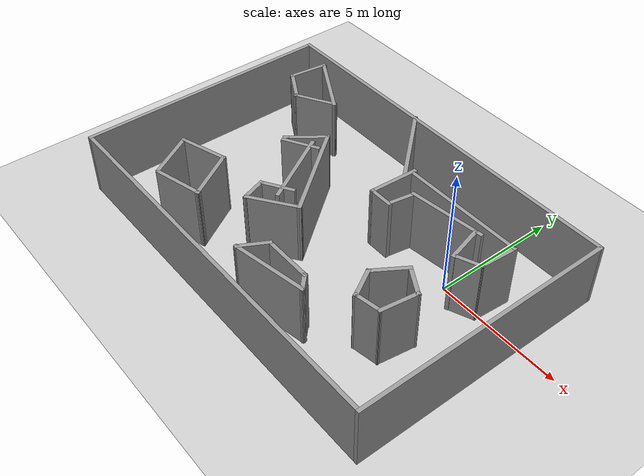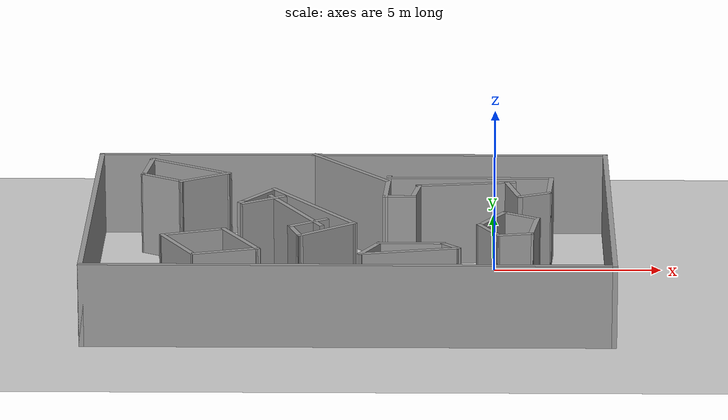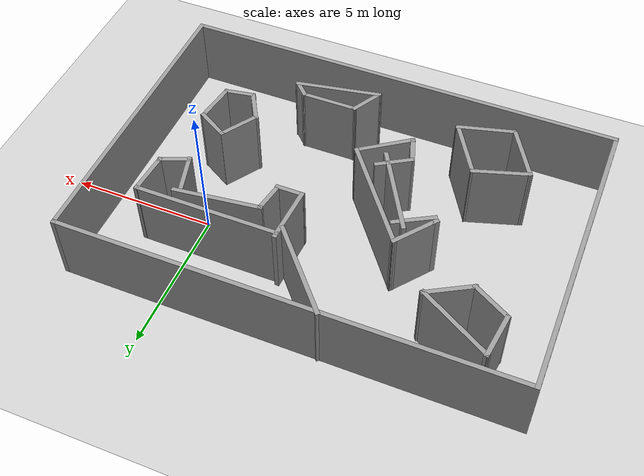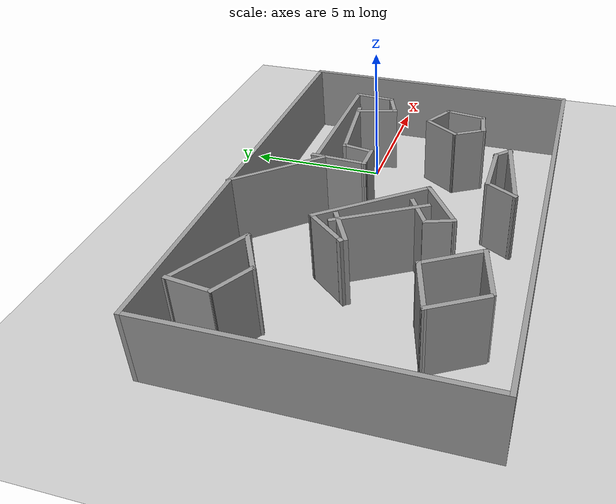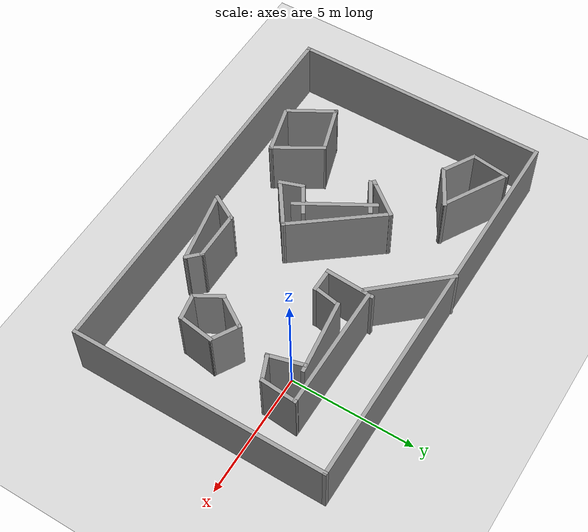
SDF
<sdf version="1.7">
 <world name="default">
  <light name="sun" type="directional">
   <pose>0 0 10 0 -0 0</pose>
   <diffuse>0.8 0.8 0.8 1</diffuse>
   <specular>0.2 0.2 0.2 1</specular>
   <attenuation>
    <range>1000</range>
    <constant>0.9</constant>
    <linear>0.01</linear>
    <quadratic>0.001</quadratic>
   </attenuation>
   <direction>-0.5 0.1 -0.9</direction>
   <spot><inner_angle>0</inner_angle><outer_angle>0</outer_angle><falloff>0</falloff></spot>
  </light>
  <model name="ground_plane">
   <static>1</static>
   <link name="link">
    <collision name="collision">
     <geometry><plane><normal>0 0 1</normal><size>100 100</size></plane></geometry>
     <surface>
      <contact><collide_bitmask>65535</collide_bitmask></contact>
      <friction><ode><mu>100</mu><mu2>50</mu2></ode></friction>
     </surface>
    </collision>
    <visual name="visual">
     <cast_shadows>0</cast_shadows>
     <geometry><plane><normal>0 0 1</normal><size>100 100</size></plane></geometry>
     <material>
      <script><uri>file://media/materials/scripts/gazebo.material</uri><name>Gazebo/Grey</name></script>
     </material>
    </visual>
   </link>
  </model>
  <gravity>0 0 -9.8</gravity>
  <magnetic_field>6e-06 2.3e-05 -4.2e-05</magnetic_field>
  <atmosphere type="adiabatic"/>
  <physics type="ode">
   <max_step_size>0.001</max_step_size>
   <real_time_factor>1</real_time_factor>
   <real_time_update_rate>1000</real_time_update_rate>
  </physics>
  <scene><ambient>0.4 0.4 0.4 1</ambient><background>0.7 0.7 0.7 1</background><shadows>1</shadows></scene>
  <spherical_coordinates>
   <surface_model>EARTH_WGS84</surface_model>
   <latitude_deg>0</latitude_deg>
   <longitude_deg>0</longitude_deg>
   <elevation>0</elevation>
   <heading_deg>0</heading_deg>
  </spherical_coordinates>
  <model name="compare_paper2">
   <pose>-4.29186 -1.57852 0 0 -0 0</pose>
   <link name="Wall_10">
    <collision name="Wall_10_Collision">
     <geometry><box><size>10.25 0.15 2.5</size></box></geometry>
     <pose>0 0 1.25 0 -0 0</pose>
    </collision>
    <visual name="Wall_10_Visual">
     <pose>0 0 1.25 0 -0 0</pose>
     <geometry><box><size>10.25 0.15 2.5</size></box></geometry>
     <material>
      <script><uri>file://media/materials/scripts/gazebo.material</uri><name>Gazebo/Grey</name></script>
      <ambient>1 1 1 1</ambient>
     </material>
     <meta><layer>0</layer></meta>
    </visual>
    <pose>-7.68074 -0.033505 0 0 -0 -1.5708</pose>
   </link>
   <link name="Wall_105">
    <collision name="Wall_105_Collision">
     <geometry><box><size>1.03815 0.15 2.5</size></box></geometry>
     <pose>0 0 1.25 0 -0 0</pose>
    </collision>
    <visual name="Wall_105_Visual">
     <pose>0 0 1.25 0 -0 0</pose>
     <geometry><box><size>1.03815 0.15 2.5</size></box></geometry>
     <material>
      <script><uri>file://media/materials/scripts/gazebo.material</uri><name>Gazebo/Grey</name></script>
      <ambient>1 1 1 1</ambient>
     </material>
     <meta><layer>0</layer></meta>
    </visual>
    <pose>-1.58572 -2.07847 0 0 -0 1.90242</pose>
   </link>
   <link name="Wall_122">
    <collision name="Wall_122_Collision">
     <geometry><box><size>1.31337 0.15 2.5</size></box></geometry>
     <pose>0 0 1.25 0 -0 0</pose>
    </collision>
    <visual name="Wall_122_Visual">
     <pose>0 0 1.25 0 -0 0</pose>
     <geometry><box><size>1.31337 0.15 2.5</size></box></geometry>
     <material>
      <script><uri>file://media/materials/scripts/gazebo.material</uri><name>Gazebo/Grey</name></script>
      <ambient>1 1 1 1</ambient>
     </material>
     <meta><layer>0</layer></meta>
    </visual>
    <pose>-1.2054 -1.33831 0 0 -0 0.555293</pose>
   </link>
   <link name="Wall_124">
    <collision name="Wall_124_Collision">
     <geometry><box><size>3.25 0.15 2.5</size></box></geometry>
     <pose>0 0 1.25 0 -0 0</pose>
    </collision>
    <visual name="Wall_124_Visual">
     <pose>0 0 1.25 0 -0 0</pose>
     <geometry><box><size>3.25 0.15 2.5</size></box></geometry>
     <material>
      <script><uri>file://media/materials/scripts/gazebo.material</uri><name>Gazebo/Grey</name></script>
      <ambient>1 1 1 1</ambient>
     </material>
     <meta><layer>0</layer></meta>
    </visual>
    <pose>-1.62429 -0.231243 0 0 -0 -1.0472</pose>
   </link>
   <link name="Wall_129">
    <collision name="Wall_129_Collision">
     <geometry><box><size>1.75 0.15 2.5</size></box></geometry>
     <pose>0 0 1.25 0 -0 0</pose>
    </collision>
    <visual name="Wall_129_Visual">
     <pose>0 0 1.25 0 -0 0</pose>
     <geometry><box><size>1.75 0.15 2.5</size></box></geometry>
     <material>
      <script><uri>file://media/materials/scripts/gazebo.material</uri><name>Gazebo/Grey</name></script>
      <ambient>1 1 1 1</ambient>
     </material>
     <meta><layer>0</layer></meta>
    </visual>
    <pose>-4.44404 2.81905 0 0 -0 0.523599</pose>
   </link>
   <link name="Wall_134">
    <collision name="Wall_134_Collision">
     <geometry><box><size>1.5 0.15 2.5</size></box></geometry>
     <pose>0 0 1.25 0 -0 0</pose>
    </collision>
    <visual name="Wall_134_Visual">
     <pose>0 0 1.25 0 -0 0</pose>
     <geometry><box><size>1.5 0.15 2.5</size></box></geometry>
     <material>
      <script><uri>file://media/materials/scripts/gazebo.material</uri><name>Gazebo/Grey</name></script>
      <ambient>1 1 1 1</ambient>
     </material>
     <meta><layer>0</layer></meta>
    </visual>
    <pose>-5.70622 2.77176 0 0 -0 -0.523599</pose>
   </link>
   <link name="Wall_146">
    <collision name="Wall_146_Collision">
     <geometry><box><size>2.86017 0.15 2.5</size></box></geometry>
     <pose>0 0 1.25 0 -0 0</pose>
    </collision>
    <visual name="Wall_146_Visual">
     <pose>0 0 1.25 0 -0 0</pose>
     <geometry><box><size>2.86017 0.15 2.5</size></box></geometry>
     <material>
      <script><uri>file://media/materials/scripts/gazebo.material</uri><name>Gazebo/Grey</name></script>
      <ambient>1 1 1 1</ambient>
     </material>
     <meta><layer>0</layer></meta>
    </visual>
    <pose>-4.92786 3.8697 0 0 -0 -0.521434</pose>
   </link>
   <link name="Wall_148">
    <collision name="Wall_148_Collision">
     <geometry><box><size>1.59769 0.15 2.5</size></box></geometry>
     <pose>0 0 1.25 0 -0 0</pose>
    </collision>
    <visual name="Wall_148_Visual">
     <pose>0 0 1.25 0 -0 0</pose>
     <geometry><box><size>1.59769 0.15 2.5</size></box></geometry>
     <material>
      <script><uri>file://media/materials/scripts/gazebo.material</uri><name>Gazebo/Grey</name></script>
      <ambient>1 1 1 1</ambient>
     </material>
     <meta><layer>0</layer></meta>
    </visual>
    <pose>-6.19682 3.84219 0 0 -0 1.44062</pose>
   </link>
   <link name="Wall_152">
    <collision name="Wall_152_Collision">
     <geometry><box><size>1.24008 0.15 2.5</size></box></geometry>
     <pose>0 0 1.25 0 -0 0</pose>
    </collision>
    <visual name="Wall_152_Visual">
     <pose>0 0 1.25 0 -0 0</pose>
     <geometry><box><size>1.24008 0.15 2.5</size></box></geometry>
     <material>
      <script><uri>file://media/materials/scripts/gazebo.material</uri><name>Gazebo/Grey</name></script>
      <ambient>1 1 1 1</ambient>
     </material>
     <meta><layer>0</layer></meta>
    </visual>
    <pose>0.620588 -3.63214 0 0 -0 1.06318</pose>
   </link>
   <link name="Wall_153">
    <collision name="Wall_153_Collision">
     <geometry><box><size>2 0.15 2.5</size></box></geometry>
     <pose>0 0 1.25 0 -0 0</pose>
    </collision>
    <visual name="Wall_153_Visual">
     <pose>0 0 1.25 0 -0 0</pose>
     <geometry><box><size>2 0.15 2.5</size></box></geometry>
     <material>
      <script><uri>file://media/materials/scripts/gazebo.material</uri><name>Gazebo/Grey</name></script>
      <ambient>1 1 1 1</ambient>
     </material>
     <meta><layer>0</layer></meta>
    </visual>
    <pose>1.81053 -3.15583 0 0 -0 0</pose>
   </link>
   <link name="Wall_158">
    <collision name="Wall_158_Collision">
     <geometry><box><size>0.75 0.15 2.5</size></box></geometry>
     <pose>0 0 1.25 0 -0 0</pose>
    </collision>
    <visual name="Wall_158_Visual">
     <pose>0 0 1.25 0 -0 0</pose>
     <geometry><box><size>0.75 0.15 2.5</size></box></geometry>
     <material>
      <script><uri>file://media/materials/scripts/gazebo.material</uri><name>Gazebo/Grey</name></script>
      <ambient>1 1 1 1</ambient>
     </material>
     <meta><layer>0</layer></meta>
    </visual>
    <pose>2.94766 -3.36796 0 0 -0 -0.785398</pose>
   </link>
   <link name="Wall_160">
    <collision name="Wall_160_Collision">
     <geometry><box><size>3.00349 0.15 2.5</size></box></geometry>
     <pose>0 0 1.25 0 -0 0</pose>
    </collision>
    <visual name="Wall_160_Visual">
     <pose>0 0 1.25 0 -0 0</pose>
     <geometry><box><size>3.00349 0.15 2.5</size></box></geometry>
     <material>
      <script><uri>file://media/materials/scripts/gazebo.material</uri><name>Gazebo/Grey</name></script>
      <ambient>1 1 1 1</ambient>
     </material>
     <meta><layer>0</layer></meta>
    </visual>
    <pose>1.75772 -3.84427 0 0 -0 0.186239</pose>
   </link>
   <link name="Wall_168">
    <collision name="Wall_168_Collision">
     <geometry><box><size>3.48424 0.15 2.5</size></box></geometry>
     <pose>0 0 1.25 0 -0 0</pose>
    </collision>
    <visual name="Wall_168_Visual">
     <pose>0 0 1.25 0 -0 0</pose>
     <geometry><box><size>3.48424 0.15 2.5</size></box></geometry>
     <material>
      <script><uri>file://media/materials/scripts/gazebo.material</uri><name>Gazebo/Grey</name></script>
      <ambient>1 1 1 1</ambient>
     </material>
     <meta><layer>0</layer></meta>
    </visual>
    <pose>-0.072263 3.80211 0 0 -0 -0.848243</pose>
   </link>
   <link name="Wall_177">
    <collision name="Wall_177_Collision">
     <geometry><box><size>2.0027 0.15 2.5</size></box></geometry>
     <pose>0 0 1.25 0 -0 0</pose>
    </collision>
    <visual name="Wall_177_Visual">
     <pose>0 0 1.25 0 -0 0</pose>
     <geometry><box><size>2.0027 0.15 2.5</size></box></geometry>
     <material>
      <script><uri>file://media/materials/scripts/gazebo.material</uri><name>Gazebo/Grey</name></script>
      <ambient>1 1 1 1</ambient>
     </material>
     <meta><layer>0</layer></meta>
    </visual>
    <pose>1.06444 2.00537 0 0 -0 -1.6248</pose>
   </link>
   <link name="Wall_179">
    <collision name="Wall_179_Collision">
     <geometry><box><size>1 0.15 2.5</size></box></geometry>
     <pose>0 0 1.25 0 -0 0</pose>
    </collision>
    <visual name="Wall_179_Visual">
     <pose>0 0 1.25 0 -0 0</pose>
     <geometry><box><size>1 0.15 2.5</size></box></geometry>
     <material>
      <script><uri>file://media/materials/scripts/gazebo.material</uri><name>Gazebo/Grey</name></script>
      <ambient>1 1 1 1</ambient>
     </material>
     <meta><layer>0</layer></meta>
    </visual>
    <pose>1.43944 1.08037 0 0 -0 0</pose>
   </link>
   <link name="Wall_191">
    <collision name="Wall_191_Collision">
     <geometry><box><size>1.01313 0.15 2.5</size></box></geometry>
     <pose>0 0 1.25 0 -0 0</pose>
    </collision>
    <visual name="Wall_191_Visual">
     <pose>0 0 1.25 0 -0 0</pose>
     <geometry><box><size>1.01313 0.15 2.5</size></box></geometry>
     <material>
      <script><uri>file://media/materials/scripts/gazebo.material</uri><name>Gazebo/Grey</name></script>
      <ambient>1 1 1 1</ambient>
     </material>
     <meta><layer>0</layer></meta>
    </visual>
    <pose>1.93994 1.63187 0 0 -0 -1.74547</pose>
   </link>
   <link name="Wall_195">
    <collision name="Wall_195_Collision">
     <geometry><box><size>3.02141 0.15 2.5</size></box></geometry>
     <pose>0 0 1.25 0 -0 0</pose>
    </collision>
    <visual name="Wall_195_Visual">
     <pose>0 0 1.25 0 -0 0</pose>
     <geometry><box><size>3.02141 0.15 2.5</size></box></geometry>
     <material>
      <script><uri>file://media/materials/scripts/gazebo.material</uri><name>Gazebo/Grey</name></script>
      <ambient>1 1 1 1</ambient>
     </material>
     <meta><layer>0</layer></meta>
    </visual>
    <pose>3.42844 2.25587 0 0 -0 -3.0194</pose>
   </link>
   <link name="Wall_199">
    <collision name="Wall_199_Collision">
     <geometry><box><size>1.5 0.15 2.5</size></box></geometry>
     <pose>0 0 1.25 0 -0 0</pose>
    </collision>
    <visual name="Wall_199_Visual">
     <pose>0 0 1.25 0 -0 0</pose>
     <geometry><box><size>1.5 0.15 2.5</size></box></geometry>
     <material>
      <script><uri>file://media/materials/scripts/gazebo.material</uri><name>Gazebo/Grey</name></script>
      <ambient>1 1 1 1</ambient>
     </material>
     <meta><layer>0</layer></meta>
    </visual>
    <pose>4.83857 1.71599 0 0 -0 -1.309</pose>
   </link>
   <link name="Wall_205">
    <collision name="Wall_205_Collision">
     <geometry><box><size>1.06924 0.15 2.5</size></box></geometry>
     <pose>0 0 1.25 0 -0 0</pose>
    </collision>
    <visual name="Wall_205_Visual">
     <pose>0 0 1.25 0 -0 0</pose>
     <geometry><box><size>1.06924 0.15 2.5</size></box></geometry>
     <material>
      <script><uri>file://media/materials/scripts/gazebo.material</uri><name>Gazebo/Grey</name></script>
      <ambient>1 1 1 1</ambient>
     </material>
     <meta><layer>0</layer></meta>
    </visual>
    <pose>5.46908 1.26546 0 0 -0 0.390607</pose>
   </link>
   <link name="Wall_209">
    <collision name="Wall_209_Collision">
     <geometry><box><size>1.5037 0.15 2.5</size></box></geometry>
     <pose>0 0 1.25 0 -0 0</pose>
    </collision>
    <visual name="Wall_209_Visual">
     <pose>0 0 1.25 0 -0 0</pose>
     <geometry><box><size>1.5037 0.15 2.5</size></box></geometry>
     <material>
      <script><uri>file://media/materials/scripts/gazebo.material</uri><name>Gazebo/Grey</name></script>
      <ambient>1 1 1 1</ambient>
     </material>
     <meta><layer>0</layer></meta>
    </visual>
    <pose>5.94577 2.13047 0 0 -0 -1.64474</pose>
   </link>
   <link name="Wall_212">
    <collision name="Wall_212_Collision">
     <geometry><box><size>5 0.15 2.5</size></box></geometry>
     <pose>0 0 1.25 0 -0 0</pose>
    </collision>
    <visual name="Wall_212_Visual">
     <pose>0 0 1.25 0 -0 0</pose>
     <geometry><box><size>5 0.15 2.5</size></box></geometry>
     <material>
      <script><uri>file://media/materials/scripts/gazebo.material</uri><name>Gazebo/Grey</name></script>
      <ambient>1 1 1 1</ambient>
     </material>
     <meta><layer>0</layer></meta>
    </visual>
    <pose>3.56043 2.80905 0 0 -0 0</pose>
   </link>
   <link name="Wall_226">
    <collision name="Wall_226_Collision">
     <geometry><box><size>1.10143 0.15 2.5</size></box></geometry>
     <pose>0 0 1.25 0 -0 0</pose>
    </collision>
    <visual name="Wall_226_Visual">
     <pose>0 0 1.25 0 -0 0</pose>
     <geometry><box><size>1.10143 0.15 2.5</size></box></geometry>
     <material>
      <script><uri>file://media/materials/scripts/gazebo.material</uri><name>Gazebo/Grey</name></script>
      <ambient>1 1 1 1</ambient>
     </material>
     <meta><layer>0</layer></meta>
    </visual>
    <pose>4.8381 -2.36314 0 0 -0 -2.96625</pose>
   </link>
   <link name="Wall_228">
    <collision name="Wall_228_Collision">
     <geometry><box><size>1.25 0.15 2.5</size></box></geometry>
     <pose>0 0 1.25 0 -0 0</pose>
    </collision>
    <visual name="Wall_228_Visual">
     <pose>0 0 1.25 0 -0 0</pose>
     <geometry><box><size>1.25 0.15 2.5</size></box></geometry>
     <material>
      <script><uri>file://media/materials/scripts/gazebo.material</uri><name>Gazebo/Grey</name></script>
      <ambient>1 1 1 1</ambient>
     </material>
     <meta><layer>0</layer></meta>
    </visual>
    <pose>4.09468 -1.96981 0 0 -0 2.0944</pose>
   </link>
   <link name="Wall_229">
    <collision name="Wall_229_Collision">
     <geometry><box><size>1.47724 0.15 2.5</size></box></geometry>
     <pose>0 0 1.25 0 -0 0</pose>
    </collision>
    <visual name="Wall_229_Visual">
     <pose>0 0 1.25 0 -0 0</pose>
     <geometry><box><size>1.47724 0.15 2.5</size></box></geometry>
     <material>
      <script><uri>file://media/materials/scripts/gazebo.material</uri><name>Gazebo/Grey</name></script>
      <ambient>1 1 1 1</ambient>
     </material>
     <meta><layer>0</layer></meta>
    </visual>
    <pose>4.1881 -0.934993 0 0 -0 1.00024</pose>
   </link>
   <link name="Wall_230">
    <collision name="Wall_230_Collision">
     <geometry><box><size>1.25 0.15 2.5</size></box></geometry>
     <pose>0 0 1.25 0 -0 0</pose>
    </collision>
    <visual name="Wall_230_Visual">
     <pose>0 0 1.25 0 -0 0</pose>
     <geometry><box><size>1.25 0.15 2.5</size></box></geometry>
     <material>
      <script><uri>file://media/materials/scripts/gazebo.material</uri><name>Gazebo/Grey</name></script>
      <ambient>1 1 1 1</ambient>
     </material>
     <meta><layer>0</layer></meta>
    </visual>
    <pose>5.03284 -0.65149 0 0 -0 -0.523599</pose>
   </link>
   <link name="Wall_231">
    <collision name="Wall_231_Collision">
     <geometry><box><size>1.51875 0.15 2.5</size></box></geometry>
     <pose>0 0 1.25 0 -0 0</pose>
    </collision>
    <visual name="Wall_231_Visual">
     <pose>0 0 1.25 0 -0 0</pose>
     <geometry><box><size>1.51875 0.15 2.5</size></box></geometry>
     <material>
      <script><uri>file://media/materials/scripts/gazebo.material</uri><name>Gazebo/Grey</name></script>
      <ambient>1 1 1 1</ambient>
     </material>
     <meta><layer>0</layer></meta>
    </visual>
    <pose>5.40784 -1.60332 0 0 -0 -1.71938</pose>
   </link>
   <link name="Wall_41">
    <collision name="Wall_41_Collision">
     <geometry><box><size>2 0.15 2.5</size></box></geometry>
     <pose>0 0 1.25 0 -0 0</pose>
    </collision>
    <visual name="Wall_41_Visual">
     <pose>0 0 1.25 0 -0 0</pose>
     <geometry><box><size>2 0.15 2.5</size></box></geometry>
     <material>
      <script><uri>file://media/materials/scripts/gazebo.material</uri><name>Gazebo/Grey</name></script>
      <ambient>1 1 1 1</ambient>
     </material>
     <meta><layer>0</layer></meta>
    </visual>
    <pose>-4.97984 -3.28865 0 0 -0 2.0944</pose>
   </link>
   <link name="Wall_42">
    <collision name="Wall_42_Collision">
     <geometry><box><size>2.00196 0.15 2.5</size></box></geometry>
     <pose>0 0 1.25 0 -0 0</pose>
    </collision>
    <visual name="Wall_42_Visual">
     <pose>0 0 1.25 0 -0 0</pose>
     <geometry><box><size>2.00196 0.15 2.5</size></box></geometry>
     <material>
      <script><uri>file://media/materials/scripts/gazebo.material</uri><name>Gazebo/Grey</name></script>
      <ambient>1 1 1 1</ambient>
     </material>
     <meta><layer>0</layer></meta>
    </visual>
    <pose>-4.55969 -2.20763 0 0 -0 0.307123</pose>
   </link>
   <link name="Wall_43">
    <collision name="Wall_43_Collision">
     <geometry><box><size>2.16747 0.15 2.5</size></box></geometry>
     <pose>0 0 1.25 0 -0 0</pose>
    </collision>
    <visual name="Wall_43_Visual">
     <pose>0 0 1.25 0 -0 0</pose>
     <geometry><box><size>2.16747 0.15 2.5</size></box></geometry>
     <material>
      <script><uri>file://media/materials/scripts/gazebo.material</uri><name>Gazebo/Grey</name></script>
      <ambient>1 1 1 1</ambient>
     </material>
     <meta><layer>0</layer></meta>
    </visual>
    <pose>-3.16108 -2.79449 0 0 -0 -1.03388</pose>
   </link>
   <link name="Wall_44">
    <collision name="Wall_44_Collision">
     <geometry><box><size>2 0.15 2.5</size></box></geometry>
     <pose>0 0 1.25 0 -0 0</pose>
    </collision>
    <visual name="Wall_44_Visual">
     <pose>0 0 1.25 0 -0 0</pose>
     <geometry><box><size>2 0.15 2.5</size></box></geometry>
     <material>
      <script><uri>file://media/materials/scripts/gazebo.material</uri><name>Gazebo/Grey</name></script>
      <ambient>1 1 1 1</ambient>
     </material>
     <meta><layer>0</layer></meta>
    </visual>
    <pose>-3.5386 -3.90069 0 0 -0 -2.87979</pose>
   </link>
   <link name="Wall_67">
    <collision name="Wall_67_Collision">
     <geometry><box><size>1.5 0.15 2.5</size></box></geometry>
     <pose>0 0 1.25 0 -0 0</pose>
    </collision>
    <visual name="Wall_67_Visual">
     <pose>0 0 1.25 0 -0 0</pose>
     <geometry><box><size>1.5 0.15 2.5</size></box></geometry>
     <material>
      <script><uri>file://media/materials/scripts/gazebo.material</uri><name>Gazebo/Grey</name></script>
      <ambient>1 1 1 1</ambient>
     </material>
     <meta><layer>0</layer></meta>
    </visual>
    <pose>-2.60557 0.718576 0 0 -0 0.523599</pose>
   </link>
   <link name="Wall_7">
    <collision name="Wall_7_Collision">
     <geometry><box><size>15.5115 0.15 2.5</size></box></geometry>
     <pose>0 0 1.25 0 -0 0</pose>
    </collision>
    <visual name="Wall_7_Visual">
     <pose>0 0 1.25 0 -0 0</pose>
     <geometry><box><size>15.5115 0.15 2.5</size></box></geometry>
     <material>
      <script><uri>file://media/materials/scripts/gazebo.material</uri><name>Gazebo/Grey</name></script>
      <ambient>1 1 1 1</ambient>
     </material>
     <meta><layer>0</layer></meta>
    </visual>
    <pose>0 -5.0835 0 0 -0 0</pose>
   </link>
   <link name="Wall_76">
    <collision name="Wall_76_Collision">
     <geometry><box><size>1.54014 0.15 2.5</size></box></geometry>
     <pose>0 0 1.25 0 -0 0</pose>
    </collision>
    <visual name="Wall_76_Visual">
     <pose>0 0 1.25 0 -0 0</pose>
     <geometry><box><size>1.54014 0.15 2.5</size></box></geometry>
     <material>
      <script><uri>file://media/materials/scripts/gazebo.material</uri><name>Gazebo/Grey</name></script>
      <ambient>1 1 1 1</ambient>
     </material>
     <meta><layer>0</layer></meta>
    </visual>
    <pose>-2.73472 1.18962 0 0 -0 -2.22869</pose>
   </link>
   <link name="Wall_78">
    <collision name="Wall_78_Collision">
     <geometry><box><size>4.10544 0.15 2.5</size></box></geometry>
     <pose>0 0 1.25 0 -0 0</pose>
    </collision>
    <visual name="Wall_78_Visual">
     <pose>0 0 1.25 0 -0 0</pose>
     <geometry><box><size>4.10544 0.15 2.5</size></box></geometry>
     <material>
      <script><uri>file://media/materials/scripts/gazebo.material</uri><name>Gazebo/Grey</name></script>
      <ambient>1 1 1 1</ambient>
     </material>
     <meta><layer>0</layer></meta>
    </visual>
    <pose>-1.09586 0.178243 0 0 -0 -0.909969</pose>
   </link>
   <link name="Wall_8">
    <collision name="Wall_8_Collision">
     <geometry><box><size>10.25 0.15 2.5</size></box></geometry>
     <pose>0 0 1.25 0 -0 0</pose>
    </collision>
    <visual name="Wall_8_Visual">
     <pose>0 0 1.25 0 -0 0</pose>
     <geometry><box><size>10.25 0.15 2.5</size></box></geometry>
     <material>
      <script><uri>file://media/materials/scripts/gazebo.material</uri><name>Gazebo/Grey</name></script>
      <ambient>1 1 1 1</ambient>
     </material>
     <meta><layer>0</layer></meta>
    </visual>
    <pose>7.68074 -0.033505 0 0 -0 1.5708</pose>
   </link>
   <link name="Wall_84">
    <collision name="Wall_84_Collision">
     <geometry><box><size>2.06693 0.15 2.5</size></box></geometry>
     <pose>0 0 1.25 0 -0 0</pose>
    </collision>
    <visual name="Wall_84_Visual">
     <pose>0 0 1.25 0 -0 0</pose>
     <geometry><box><size>2.06693 0.15 2.5</size></box></geometry>
     <material>
      <script><uri>file://media/materials/scripts/gazebo.material</uri><name>Gazebo/Grey</name></script>
      <ambient>1 1 1 1</ambient>
     </material>
     <meta><layer>0</layer></meta>
    </visual>
    <pose>-0.661562 -1.94074 0 0 -0 -2.52069</pose>
   </link>
   <link name="Wall_9">
    <collision name="Wall_9_Collision">
     <geometry><box><size>15.5115 0.15 2.5</size></box></geometry>
     <pose>0 0 1.25 0 -0 0</pose>
    </collision>
    <visual name="Wall_9_Visual">
     <pose>0 0 1.25 0 -0 0</pose>
     <geometry><box><size>15.5115 0.15 2.5</size></box></geometry>
     <material>
      <script><uri>file://media/materials/scripts/gazebo.material</uri><name>Gazebo/Grey</name></script>
      <ambient>1 1 1 1</ambient>
     </material>
     <meta><layer>0</layer></meta>
    </visual>
    <pose>0 5.01649 0 0 -0 3.14159</pose>
   </link>
   <static>1</static>
  </model>
  <model name="Untitled">
   <pose>-9.65987 -0.632954 0 0 -0 0.885657</pose>
   <link name="Wall_0">
    <collision name="Wall_0_Collision">
     <geometry><box><size>0.25 0.15 2.5</size></box></geometry>
     <pose>0 0 1.25 0 -0 0</pose>
    </collision>
    <visual name="Wall_0_Visual">
     <pose>0 0 1.25 0 -0 0</pose>
     <geometry><box><size>0.25 0.15 2.5</size></box></geometry>
     <material>
      <script><uri>file://media/materials/scripts/gazebo.material</uri><name>Gazebo/Grey</name></script>
      <ambient>1 1 1 1</ambient>
     </material>
     <meta><layer>0</layer></meta>
    </visual>
    <pose>1.0225 -1.9075 0 0 -0 0</pose>
   </link>
   <static>1</static>
  </model>
 </world>
</sdf>
